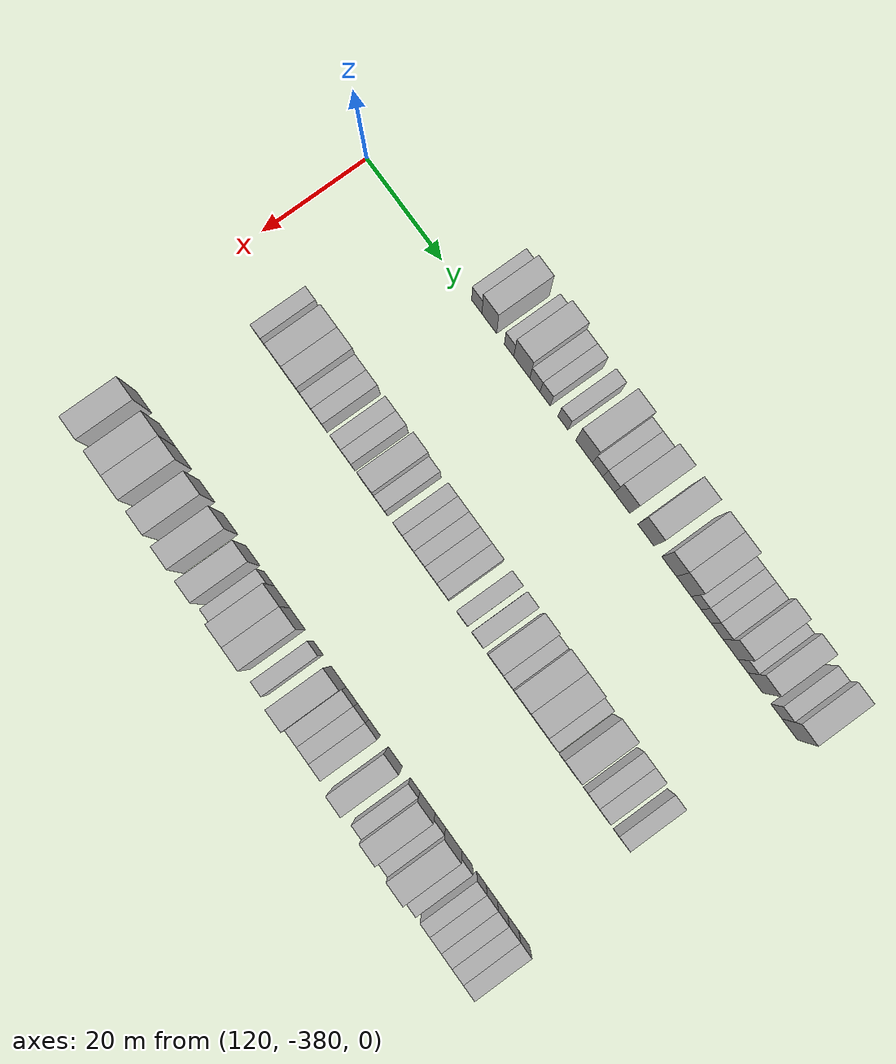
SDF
<sdf version="1.6">
 <world name="default">
  <model name="building_706">
   <static>1</static>
   <pose>115.0000 -350.8113 0 0.000000 0.000000 0.000000</pose>
   <link name="link">
    <pose>0 0 3.00 0 0 0</pose>
    <collision name="collision"><geometry><box><size>10.0000 2.6884 6.0000</size></box></geometry></collision>
    <visual name="visual">
     <cast_shadows>0</cast_shadows>
     <geometry><box><size>10.0000 2.6884 6.0000</size></box></geometry>
     <material>
      <script>
       <uri>model://HANNAS_wall/materials/scripts</uri>
       <uri>model://HANNAS_wall/materials/textures</uri>
       <name>vrc/HANNAS_wall</name>
      </script>
     </material>
    </visual>
   </link>
  </model>
  <model name="building_707">
   <static>1</static>
   <pose>115.0000 -347.5582 0 0.000000 0.000000 0.000000</pose>
   <link name="link">
    <pose>0 0 4.50 0 0 0</pose>
    <collision name="collision"><geometry><box><size>10.0000 3.8179 9.0000</size></box></geometry></collision>
    <visual name="visual">
     <cast_shadows>0</cast_shadows>
     <geometry><box><size>10.0000 3.8179 9.0000</size></box></geometry>
     <material>
      <script>
       <uri>model://HANNAS_wall/materials/scripts</uri>
       <uri>model://HANNAS_wall/materials/textures</uri>
       <name>vrc/HANNAS_wall</name>
      </script>
     </material>
    </visual>
   </link>
  </model>
  <model name="building_708">
   <static>1</static>
   <pose>115.0000 -342.4204 0 0.000000 0.000000 0.000000</pose>
   <link name="link">
    <pose>0 0 3.00 0 0 0</pose>
    <collision name="collision"><geometry><box><size>10.0000 2.4578 6.0000</size></box></geometry></collision>
    <visual name="visual">
     <cast_shadows>0</cast_shadows>
     <geometry><box><size>10.0000 2.4578 6.0000</size></box></geometry>
     <material>
      <script>
       <uri>model://HANNAS_wall/materials/scripts</uri>
       <uri>model://HANNAS_wall/materials/textures</uri>
       <name>vrc/HANNAS_wall</name>
      </script>
     </material>
    </visual>
   </link>
  </model>
  <model name="building_709">
   <static>1</static>
   <pose>115.0000 -339.1095 0 0.000000 0.000000 0.000000</pose>
   <link name="link">
    <pose>0 0 4.50 0 0 0</pose>
    <collision name="collision"><geometry><box><size>10.0000 4.1639 9.0000</size></box></geometry></collision>
    <visual name="visual">
     <cast_shadows>0</cast_shadows>
     <geometry><box><size>10.0000 4.1639 9.0000</size></box></geometry>
     <material>
      <script>
       <uri>model://HANNAS_wall/materials/scripts</uri>
       <uri>model://HANNAS_wall/materials/textures</uri>
       <name>vrc/HANNAS_wall</name>
      </script>
     </material>
    </visual>
   </link>
  </model>
  <model name="building_710">
   <static>1</static>
   <pose>115.0000 -335.6915 0 0.000000 0.000000 0.000000</pose>
   <link name="link">
    <pose>0 0 3.00 0 0 0</pose>
    <collision name="collision"><geometry><box><size>10.0000 2.6723 6.0000</size></box></geometry></collision>
    <visual name="visual">
     <cast_shadows>0</cast_shadows>
     <geometry><box><size>10.0000 2.6723 6.0000</size></box></geometry>
     <material>
      <script>
       <uri>model://HANNAS_wall/materials/scripts</uri>
       <uri>model://HANNAS_wall/materials/textures</uri>
       <name>vrc/HANNAS_wall</name>
      </script>
     </material>
    </visual>
   </link>
  </model>
  <model name="building_711">
   <static>1</static>
   <pose>115.0000 -333.0444 0 0.000000 0.000000 0.000000</pose>
   <link name="link">
    <pose>0 0 3.00 0 0 0</pose>
    <collision name="collision"><geometry><box><size>10.0000 2.6220 6.0000</size></box></geometry></collision>
    <visual name="visual">
     <cast_shadows>0</cast_shadows>
     <geometry><box><size>10.0000 2.6220 6.0000</size></box></geometry>
     <material>
      <script>
       <uri>model://HANNAS_wall/materials/scripts</uri>
       <uri>model://HANNAS_wall/materials/textures</uri>
       <name>vrc/HANNAS_wall</name>
      </script>
     </material>
    </visual>
   </link>
  </model>
  <model name="building_712">
   <static>1</static>
   <pose>115.0000 -328.4380 0 0.000000 0.000000 0.000000</pose>
   <link name="link">
    <pose>0 0 3.00 0 0 0</pose>
    <collision name="collision"><geometry><box><size>10.0000 2.5908 6.0000</size></box></geometry></collision>
    <visual name="visual">
     <cast_shadows>0</cast_shadows>
     <geometry><box><size>10.0000 2.5908 6.0000</size></box></geometry>
     <material>
      <script>
       <uri>model://HANNAS_wall/materials/scripts</uri>
       <uri>model://HANNAS_wall/materials/textures</uri>
       <name>vrc/HANNAS_wall</name>
      </script>
     </material>
    </visual>
   </link>
  </model>
  <model name="building_713">
   <static>1</static>
   <pose>115.0000 -322.9918 0 0.000000 0.000000 0.000000</pose>
   <link name="link">
    <pose>0 0 4.50 0 0 0</pose>
    <collision name="collision"><geometry><box><size>10.0000 4.3016 9.0000</size></box></geometry></collision>
    <visual name="visual">
     <cast_shadows>0</cast_shadows>
     <geometry><box><size>10.0000 4.3016 9.0000</size></box></geometry>
     <material>
      <script>
       <uri>model://HANNAS_wall/materials/scripts</uri>
       <uri>model://HANNAS_wall/materials/textures</uri>
       <name>vrc/HANNAS_wall</name>
      </script>
     </material>
    </visual>
   </link>
  </model>
  <model name="building_714">
   <static>1</static>
   <pose>115.0000 -319.5148 0 0.000000 0.000000 0.000000</pose>
   <link name="link">
    <pose>0 0 3.00 0 0 0</pose>
    <collision name="collision"><geometry><box><size>10.0000 2.6524 6.0000</size></box></geometry></collision>
    <visual name="visual">
     <cast_shadows>0</cast_shadows>
     <geometry><box><size>10.0000 2.6524 6.0000</size></box></geometry>
     <material>
      <script>
       <uri>model://HANNAS_wall/materials/scripts</uri>
       <uri>model://HANNAS_wall/materials/textures</uri>
       <name>vrc/HANNAS_wall</name>
      </script>
     </material>
    </visual>
   </link>
  </model>
  <model name="building_715">
   <static>1</static>
   <pose>115.0000 -316.7003 0 0.000000 0.000000 0.000000</pose>
   <link name="link">
    <pose>0 0 3.00 0 0 0</pose>
    <collision name="collision"><geometry><box><size>10.0000 2.9765 6.0000</size></box></geometry></collision>
    <visual name="visual">
     <cast_shadows>0</cast_shadows>
     <geometry><box><size>10.0000 2.9765 6.0000</size></box></geometry>
     <material>
      <script>
       <uri>model://HANNAS_wall/materials/scripts</uri>
       <uri>model://HANNAS_wall/materials/textures</uri>
       <name>vrc/HANNAS_wall</name>
      </script>
     </material>
    </visual>
   </link>
  </model>
  <model name="building_716">
   <static>1</static>
   <pose>115.0000 -313.2595 0 0.000000 0.000000 0.000000</pose>
   <link name="link">
    <pose>0 0 4.50 0 0 0</pose>
    <collision name="collision"><geometry><box><size>10.0000 3.9050 9.0000</size></box></geometry></collision>
    <visual name="visual">
     <cast_shadows>0</cast_shadows>
     <geometry><box><size>10.0000 3.9050 9.0000</size></box></geometry>
     <material>
      <script>
       <uri>model://HANNAS_wall/materials/scripts</uri>
       <uri>model://HANNAS_wall/materials/textures</uri>
       <name>vrc/HANNAS_wall</name>
      </script>
     </material>
    </visual>
   </link>
  </model>
  <model name="building_717">
   <static>1</static>
   <pose>115.0000 -307.2554 0 0.000000 0.000000 0.000000</pose>
   <link name="link">
    <pose>0 0 4.50 0 0 0</pose>
    <collision name="collision"><geometry><box><size>10.0000 4.1033 9.0000</size></box></geometry></collision>
    <visual name="visual">
     <cast_shadows>0</cast_shadows>
     <geometry><box><size>10.0000 4.1033 9.0000</size></box></geometry>
     <material>
      <script>
       <uri>model://HANNAS_wall/materials/scripts</uri>
       <uri>model://HANNAS_wall/materials/textures</uri>
       <name>vrc/HANNAS_wall</name>
      </script>
     </material>
    </visual>
   </link>
  </model>
  <model name="building_718">
   <static>1</static>
   <pose>115.0000 -301.3726 0 0.000000 0.000000 0.000000</pose>
   <link name="link">
    <pose>0 0 4.50 0 0 0</pose>
    <collision name="collision"><geometry><box><size>10.0000 3.6623 9.0000</size></box></geometry></collision>
    <visual name="visual">
     <cast_shadows>0</cast_shadows>
     <geometry><box><size>10.0000 3.6623 9.0000</size></box></geometry>
     <material>
      <script>
       <uri>model://HANNAS_wall/materials/scripts</uri>
       <uri>model://HANNAS_wall/materials/textures</uri>
       <name>vrc/HANNAS_wall</name>
      </script>
     </material>
    </visual>
   </link>
  </model>
  <model name="building_719">
   <static>1</static>
   <pose>115.0000 -297.6748 0 0.000000 0.000000 0.000000</pose>
   <link name="link">
    <pose>0 0 4.50 0 0 0</pose>
    <collision name="collision"><geometry><box><size>10.0000 3.7334 9.0000</size></box></geometry></collision>
    <visual name="visual">
     <cast_shadows>0</cast_shadows>
     <geometry><box><size>10.0000 3.7334 9.0000</size></box></geometry>
     <material>
      <script>
       <uri>model://HANNAS_wall/materials/scripts</uri>
       <uri>model://HANNAS_wall/materials/textures</uri>
       <name>vrc/HANNAS_wall</name>
      </script>
     </material>
    </visual>
   </link>
  </model>
  <model name="building_720">
   <static>1</static>
   <pose>115.0000 -294.5920 0 0.000000 0.000000 0.000000</pose>
   <link name="link">
    <pose>0 0 3.00 0 0 0</pose>
    <collision name="collision"><geometry><box><size>10.0000 2.4323 6.0000</size></box></geometry></collision>
    <visual name="visual">
     <cast_shadows>0</cast_shadows>
     <geometry><box><size>10.0000 2.4323 6.0000</size></box></geometry>
     <material>
      <script>
       <uri>model://HANNAS_wall/materials/scripts</uri>
       <uri>model://HANNAS_wall/materials/textures</uri>
       <name>vrc/HANNAS_wall</name>
      </script>
     </material>
    </visual>
   </link>
  </model>
  <model name="building_721">
   <static>1</static>
   <pose>115.0000 -292.0823 0 0.000000 0.000000 0.000000</pose>
   <link name="link">
    <pose>0 0 3.00 0 0 0</pose>
    <collision name="collision"><geometry><box><size>10.0000 2.5871 6.0000</size></box></geometry></collision>
    <visual name="visual">
     <cast_shadows>0</cast_shadows>
     <geometry><box><size>10.0000 2.5871 6.0000</size></box></geometry>
     <material>
      <script>
       <uri>model://HANNAS_wall/materials/scripts</uri>
       <uri>model://HANNAS_wall/materials/textures</uri>
       <name>vrc/HANNAS_wall</name>
      </script>
     </material>
    </visual>
   </link>
  </model>
  <model name="building_722">
   <static>1</static>
   <pose>115.0000 -289.2990 0 0.000000 0.000000 0.000000</pose>
   <link name="link">
    <pose>0 0 3.00 0 0 0</pose>
    <collision name="collision"><geometry><box><size>10.0000 2.9794 6.0000</size></box></geometry></collision>
    <visual name="visual">
     <cast_shadows>0</cast_shadows>
     <geometry><box><size>10.0000 2.9794 6.0000</size></box></geometry>
     <material>
      <script>
       <uri>model://HANNAS_wall/materials/scripts</uri>
       <uri>model://HANNAS_wall/materials/textures</uri>
       <name>vrc/HANNAS_wall</name>
      </script>
     </material>
    </visual>
   </link>
  </model>
  <model name="building_723">
   <static>1</static>
   <pose>115.0000 -285.9742 0 0.000000 0.000000 0.000000</pose>
   <link name="link">
    <pose>0 0 4.50 0 0 0</pose>
    <collision name="collision"><geometry><box><size>10.0000 3.6703 9.0000</size></box></geometry></collision>
    <visual name="visual">
     <cast_shadows>0</cast_shadows>
     <geometry><box><size>10.0000 3.6703 9.0000</size></box></geometry>
     <material>
      <script>
       <uri>model://HANNAS_wall/materials/scripts</uri>
       <uri>model://HANNAS_wall/materials/textures</uri>
       <name>vrc/HANNAS_wall</name>
      </script>
     </material>
    </visual>
   </link>
  </model>
  <model name="building_724">
   <static>1</static>
   <pose>115.0000 -282.9062 0 0.000000 0.000000 0.000000</pose>
   <link name="link">
    <pose>0 0 3.00 0 0 0</pose>
    <collision name="collision"><geometry><box><size>10.0000 2.4657 6.0000</size></box></geometry></collision>
    <visual name="visual">
     <cast_shadows>0</cast_shadows>
     <geometry><box><size>10.0000 2.4657 6.0000</size></box></geometry>
     <material>
      <script>
       <uri>model://HANNAS_wall/materials/scripts</uri>
       <uri>model://HANNAS_wall/materials/textures</uri>
       <name>vrc/HANNAS_wall</name>
      </script>
     </material>
    </visual>
   </link>
  </model>
  <model name="building_725">
   <static>1</static>
   <pose>115.0000 -279.8290 0 0.000000 0.000000 0.000000</pose>
   <link name="link">
    <pose>0 0 4.50 0 0 0</pose>
    <collision name="collision"><geometry><box><size>10.0000 3.6887 9.0000</size></box></geometry></collision>
    <visual name="visual">
     <cast_shadows>0</cast_shadows>
     <geometry><box><size>10.0000 3.6887 9.0000</size></box></geometry>
     <material>
      <script>
       <uri>model://HANNAS_wall/materials/scripts</uri>
       <uri>model://HANNAS_wall/materials/textures</uri>
       <name>vrc/HANNAS_wall</name>
      </script>
     </material>
    </visual>
   </link>
  </model>
  <model name="building_726">
   <static>1</static>
   <pose>115.0000 -274.6248 0 0.000000 0.000000 0.000000</pose>
   <link name="link">
    <pose>0 0 3.00 0 0 0</pose>
    <collision name="collision"><geometry><box><size>10.0000 2.7199 6.0000</size></box></geometry></collision>
    <visual name="visual">
     <cast_shadows>0</cast_shadows>
     <geometry><box><size>10.0000 2.7199 6.0000</size></box></geometry>
     <material>
      <script>
       <uri>model://HANNAS_wall/materials/scripts</uri>
       <uri>model://HANNAS_wall/materials/textures</uri>
       <name>vrc/HANNAS_wall</name>
      </script>
     </material>
    </visual>
   </link>
  </model>
  <model name="building_727">
   <static>1</static>
   <pose>115.0000 -271.3544 0 0.000000 0.000000 0.000000</pose>
   <link name="link">
    <pose>0 0 4.50 0 0 0</pose>
    <collision name="collision"><geometry><box><size>10.0000 3.8208 9.0000</size></box></geometry></collision>
    <visual name="visual">
     <cast_shadows>0</cast_shadows>
     <geometry><box><size>10.0000 3.8208 9.0000</size></box></geometry>
     <material>
      <script>
       <uri>model://HANNAS_wall/materials/scripts</uri>
       <uri>model://HANNAS_wall/materials/textures</uri>
       <name>vrc/HANNAS_wall</name>
      </script>
     </material>
    </visual>
   </link>
  </model>
  <model name="building_933">
   <static>1</static>
   <pose>145.0000 -365.4677 0 0.000000 0.000000 0.000000</pose>
   <link name="link">
    <pose>0 0 3.00 0 0 0</pose>
    <collision name="collision"><geometry><box><size>10.0000 2.6001 6.0000</size></box></geometry></collision>
    <visual name="visual">
     <cast_shadows>0</cast_shadows>
     <geometry><box><size>10.0000 2.6001 6.0000</size></box></geometry>
     <material>
      <script>
       <uri>model://HANNAS_wall/materials/scripts</uri>
       <uri>model://HANNAS_wall/materials/textures</uri>
       <name>vrc/HANNAS_wall</name>
      </script>
     </material>
    </visual>
   </link>
  </model>
  <model name="building_934">
   <static>1</static>
   <pose>145.0000 -360.0691 0 0.000000 0.000000 0.000000</pose>
   <link name="link">
    <pose>0 0 4.50 0 0 0</pose>
    <collision name="collision"><geometry><box><size>10.0000 4.1971 9.0000</size></box></geometry></collision>
    <visual name="visual">
     <cast_shadows>0</cast_shadows>
     <geometry><box><size>10.0000 4.1971 9.0000</size></box></geometry>
     <material>
      <script>
       <uri>model://HANNAS_wall/materials/scripts</uri>
       <uri>model://HANNAS_wall/materials/textures</uri>
       <name>vrc/HANNAS_wall</name>
      </script>
     </material>
    </visual>
   </link>
  </model>
  <model name="building_935">
   <static>1</static>
   <pose>145.0000 -356.0394 0 0.000000 0.000000 0.000000</pose>
   <link name="link">
    <pose>0 0 4.50 0 0 0</pose>
    <collision name="collision"><geometry><box><size>10.0000 3.8623 9.0000</size></box></geometry></collision>
    <visual name="visual">
     <cast_shadows>0</cast_shadows>
     <geometry><box><size>10.0000 3.8623 9.0000</size></box></geometry>
     <material>
      <script>
       <uri>model://HANNAS_wall/materials/scripts</uri>
       <uri>model://HANNAS_wall/materials/textures</uri>
       <name>vrc/HANNAS_wall</name>
      </script>
     </material>
    </visual>
   </link>
  </model>
  <model name="building_936">
   <static>1</static>
   <pose>145.0000 -352.6444 0 0.000000 0.000000 0.000000</pose>
   <link name="link">
    <pose>0 0 3.00 0 0 0</pose>
    <collision name="collision"><geometry><box><size>10.0000 2.9276 6.0000</size></box></geometry></collision>
    <visual name="visual">
     <cast_shadows>0</cast_shadows>
     <geometry><box><size>10.0000 2.9276 6.0000</size></box></geometry>
     <material>
      <script>
       <uri>model://HANNAS_wall/materials/scripts</uri>
       <uri>model://HANNAS_wall/materials/textures</uri>
       <name>vrc/HANNAS_wall</name>
      </script>
     </material>
    </visual>
   </link>
  </model>
  <model name="building_937">
   <static>1</static>
   <pose>145.0000 -349.7613 0 0.000000 0.000000 0.000000</pose>
   <link name="link">
    <pose>0 0 3.00 0 0 0</pose>
    <collision name="collision"><geometry><box><size>10.0000 2.8388 6.0000</size></box></geometry></collision>
    <visual name="visual">
     <cast_shadows>0</cast_shadows>
     <geometry><box><size>10.0000 2.8388 6.0000</size></box></geometry>
     <material>
      <script>
       <uri>model://HANNAS_wall/materials/scripts</uri>
       <uri>model://HANNAS_wall/materials/textures</uri>
       <name>vrc/HANNAS_wall</name>
      </script>
     </material>
    </visual>
   </link>
  </model>
  <model name="building_938">
   <static>1</static>
   <pose>145.0000 -344.9999 0 0.000000 0.000000 0.000000</pose>
   <link name="link">
    <pose>0 0 3.00 0 0 0</pose>
    <collision name="collision"><geometry><box><size>10.0000 2.6840 6.0000</size></box></geometry></collision>
    <visual name="visual">
     <cast_shadows>0</cast_shadows>
     <geometry><box><size>10.0000 2.6840 6.0000</size></box></geometry>
     <material>
      <script>
       <uri>model://HANNAS_wall/materials/scripts</uri>
       <uri>model://HANNAS_wall/materials/textures</uri>
       <name>vrc/HANNAS_wall</name>
      </script>
     </material>
    </visual>
   </link>
  </model>
  <model name="building_939">
   <static>1</static>
   <pose>145.0000 -342.3365 0 0.000000 0.000000 0.000000</pose>
   <link name="link">
    <pose>0 0 3.00 0 0 0</pose>
    <collision name="collision"><geometry><box><size>10.0000 2.6427 6.0000</size></box></geometry></collision>
    <visual name="visual">
     <cast_shadows>0</cast_shadows>
     <geometry><box><size>10.0000 2.6427 6.0000</size></box></geometry>
     <material>
      <script>
       <uri>model://HANNAS_wall/materials/scripts</uri>
       <uri>model://HANNAS_wall/materials/textures</uri>
       <name>vrc/HANNAS_wall</name>
      </script>
     </material>
    </visual>
   </link>
  </model>
  <model name="building_940">
   <static>1</static>
   <pose>145.0000 -337.1636 0 0.000000 0.000000 0.000000</pose>
   <link name="link">
    <pose>0 0 4.50 0 0 0</pose>
    <collision name="collision"><geometry><box><size>10.0000 3.7031 9.0000</size></box></geometry></collision>
    <visual name="visual">
     <cast_shadows>0</cast_shadows>
     <geometry><box><size>10.0000 3.7031 9.0000</size></box></geometry>
     <material>
      <script>
       <uri>model://HANNAS_wall/materials/scripts</uri>
       <uri>model://HANNAS_wall/materials/textures</uri>
       <name>vrc/HANNAS_wall</name>
      </script>
     </material>
    </visual>
   </link>
  </model>
  <model name="building_941">
   <static>1</static>
   <pose>145.0000 -333.9051 0 0.000000 0.000000 0.000000</pose>
   <link name="link">
    <pose>0 0 3.00 0 0 0</pose>
    <collision name="collision"><geometry><box><size>10.0000 2.8138 6.0000</size></box></geometry></collision>
    <visual name="visual">
     <cast_shadows>0</cast_shadows>
     <geometry><box><size>10.0000 2.8138 6.0000</size></box></geometry>
     <material>
      <script>
       <uri>model://HANNAS_wall/materials/scripts</uri>
       <uri>model://HANNAS_wall/materials/textures</uri>
       <name>vrc/HANNAS_wall</name>
      </script>
     </material>
    </visual>
   </link>
  </model>
  <model name="building_942">
   <static>1</static>
   <pose>145.0000 -329.2897 0 0.000000 0.000000 0.000000</pose>
   <link name="link">
    <pose>0 0 3.00 0 0 0</pose>
    <collision name="collision"><geometry><box><size>10.0000 2.4170 6.0000</size></box></geometry></collision>
    <visual name="visual">
     <cast_shadows>0</cast_shadows>
     <geometry><box><size>10.0000 2.4170 6.0000</size></box></geometry>
     <material>
      <script>
       <uri>model://HANNAS_wall/materials/scripts</uri>
       <uri>model://HANNAS_wall/materials/textures</uri>
       <name>vrc/HANNAS_wall</name>
      </script>
     </material>
    </visual>
   </link>
  </model>
  <model name="building_943">
   <static>1</static>
   <pose>145.0000 -326.6623 0 0.000000 0.000000 0.000000</pose>
   <link name="link">
    <pose>0 0 3.00 0 0 0</pose>
    <collision name="collision"><geometry><box><size>10.0000 2.8379 6.0000</size></box></geometry></collision>
    <visual name="visual">
     <cast_shadows>0</cast_shadows>
     <geometry><box><size>10.0000 2.8379 6.0000</size></box></geometry>
     <material>
      <script>
       <uri>model://HANNAS_wall/materials/scripts</uri>
       <uri>model://HANNAS_wall/materials/textures</uri>
       <name>vrc/HANNAS_wall</name>
      </script>
     </material>
    </visual>
   </link>
  </model>
  <model name="building_944">
   <static>1</static>
   <pose>145.0000 -323.8702 0 0.000000 0.000000 0.000000</pose>
   <link name="link">
    <pose>0 0 3.00 0 0 0</pose>
    <collision name="collision"><geometry><box><size>10.0000 2.7462 6.0000</size></box></geometry></collision>
    <visual name="visual">
     <cast_shadows>0</cast_shadows>
     <geometry><box><size>10.0000 2.7462 6.0000</size></box></geometry>
     <material>
      <script>
       <uri>model://HANNAS_wall/materials/scripts</uri>
       <uri>model://HANNAS_wall/materials/textures</uri>
       <name>vrc/HANNAS_wall</name>
      </script>
     </material>
    </visual>
   </link>
  </model>
  <model name="building_945">
   <static>1</static>
   <pose>145.0000 -321.0031 0 0.000000 0.000000 0.000000</pose>
   <link name="link">
    <pose>0 0 3.00 0 0 0</pose>
    <collision name="collision"><geometry><box><size>10.0000 2.9878 6.0000</size></box></geometry></collision>
    <visual name="visual">
     <cast_shadows>0</cast_shadows>
     <geometry><box><size>10.0000 2.9878 6.0000</size></box></geometry>
     <material>
      <script>
       <uri>model://HANNAS_wall/materials/scripts</uri>
       <uri>model://HANNAS_wall/materials/textures</uri>
       <name>vrc/HANNAS_wall</name>
      </script>
     </material>
    </visual>
   </link>
  </model>
  <model name="building_946">
   <static>1</static>
   <pose>145.0000 -318.0660 0 0.000000 0.000000 0.000000</pose>
   <link name="link">
    <pose>0 0 3.00 0 0 0</pose>
    <collision name="collision"><geometry><box><size>10.0000 2.8864 6.0000</size></box></geometry></collision>
    <visual name="visual">
     <cast_shadows>0</cast_shadows>
     <geometry><box><size>10.0000 2.8864 6.0000</size></box></geometry>
     <material>
      <script>
       <uri>model://HANNAS_wall/materials/scripts</uri>
       <uri>model://HANNAS_wall/materials/textures</uri>
       <name>vrc/HANNAS_wall</name>
      </script>
     </material>
    </visual>
   </link>
  </model>
  <model name="building_947">
   <static>1</static>
   <pose>145.0000 -313.2412 0 0.000000 0.000000 0.000000</pose>
   <link name="link">
    <pose>0 0 3.00 0 0 0</pose>
    <collision name="collision"><geometry><box><size>10.0000 2.7632 6.0000</size></box></geometry></collision>
    <visual name="visual">
     <cast_shadows>0</cast_shadows>
     <geometry><box><size>10.0000 2.7632 6.0000</size></box></geometry>
     <material>
      <script>
       <uri>model://HANNAS_wall/materials/scripts</uri>
       <uri>model://HANNAS_wall/materials/textures</uri>
       <name>vrc/HANNAS_wall</name>
      </script>
     </material>
    </visual>
   </link>
  </model>
  <model name="building_948">
   <static>1</static>
   <pose>145.0000 -309.4080 0 0.000000 0.000000 0.000000</pose>
   <link name="link">
    <pose>0 0 3.00 0 0 0</pose>
    <collision name="collision"><geometry><box><size>10.0000 2.9034 6.0000</size></box></geometry></collision>
    <visual name="visual">
     <cast_shadows>0</cast_shadows>
     <geometry><box><size>10.0000 2.9034 6.0000</size></box></geometry>
     <material>
      <script>
       <uri>model://HANNAS_wall/materials/scripts</uri>
       <uri>model://HANNAS_wall/materials/textures</uri>
       <name>vrc/HANNAS_wall</name>
      </script>
     </material>
    </visual>
   </link>
  </model>
  <model name="building_949">
   <static>1</static>
   <pose>145.0000 -305.1080 0 0.000000 0.000000 0.000000</pose>
   <link name="link">
    <pose>0 0 4.50 0 0 0</pose>
    <collision name="collision"><geometry><box><size>10.0000 3.6966 9.0000</size></box></geometry></collision>
    <visual name="visual">
     <cast_shadows>0</cast_shadows>
     <geometry><box><size>10.0000 3.6966 9.0000</size></box></geometry>
     <material>
      <script>
       <uri>model://HANNAS_wall/materials/scripts</uri>
       <uri>model://HANNAS_wall/materials/textures</uri>
       <name>vrc/HANNAS_wall</name>
      </script>
     </material>
    </visual>
   </link>
  </model>
  <model name="building_950">
   <static>1</static>
   <pose>145.0000 -301.9781 0 0.000000 0.000000 0.000000</pose>
   <link name="link">
    <pose>0 0 3.00 0 0 0</pose>
    <collision name="collision"><geometry><box><size>10.0000 2.5632 6.0000</size></box></geometry></collision>
    <visual name="visual">
     <cast_shadows>0</cast_shadows>
     <geometry><box><size>10.0000 2.5632 6.0000</size></box></geometry>
     <material>
      <script>
       <uri>model://HANNAS_wall/materials/scripts</uri>
       <uri>model://HANNAS_wall/materials/textures</uri>
       <name>vrc/HANNAS_wall</name>
      </script>
     </material>
    </visual>
   </link>
  </model>
  <model name="building_951">
   <static>1</static>
   <pose>145.0000 -298.6809 0 0.000000 0.000000 0.000000</pose>
   <link name="link">
    <pose>0 0 4.50 0 0 0</pose>
    <collision name="collision"><geometry><box><size>10.0000 4.0311 9.0000</size></box></geometry></collision>
    <visual name="visual">
     <cast_shadows>0</cast_shadows>
     <geometry><box><size>10.0000 4.0311 9.0000</size></box></geometry>
     <material>
      <script>
       <uri>model://HANNAS_wall/materials/scripts</uri>
       <uri>model://HANNAS_wall/materials/textures</uri>
       <name>vrc/HANNAS_wall</name>
      </script>
     </material>
    </visual>
   </link>
  </model>
  <model name="building_952">
   <static>1</static>
   <pose>145.0000 -294.5324 0 0.000000 0.000000 0.000000</pose>
   <link name="link">
    <pose>0 0 4.50 0 0 0</pose>
    <collision name="collision"><geometry><box><size>10.0000 4.2659 9.0000</size></box></geometry></collision>
    <visual name="visual">
     <cast_shadows>0</cast_shadows>
     <geometry><box><size>10.0000 4.2659 9.0000</size></box></geometry>
     <material>
      <script>
       <uri>model://HANNAS_wall/materials/scripts</uri>
       <uri>model://HANNAS_wall/materials/textures</uri>
       <name>vrc/HANNAS_wall</name>
      </script>
     </material>
    </visual>
   </link>
  </model>
  <model name="building_953">
   <static>1</static>
   <pose>145.0000 -291.0200 0 0.000000 0.000000 0.000000</pose>
   <link name="link">
    <pose>0 0 3.00 0 0 0</pose>
    <collision name="collision"><geometry><box><size>10.0000 2.7590 6.0000</size></box></geometry></collision>
    <visual name="visual">
     <cast_shadows>0</cast_shadows>
     <geometry><box><size>10.0000 2.7590 6.0000</size></box></geometry>
     <material>
      <script>
       <uri>model://HANNAS_wall/materials/scripts</uri>
       <uri>model://HANNAS_wall/materials/textures</uri>
       <name>vrc/HANNAS_wall</name>
      </script>
     </material>
    </visual>
   </link>
  </model>
  <model name="building_954">
   <static>1</static>
   <pose>145.0000 -286.5961 0 0.000000 0.000000 0.000000</pose>
   <link name="link">
    <pose>0 0 4.50 0 0 0</pose>
    <collision name="collision"><geometry><box><size>10.0000 4.0887 9.0000</size></box></geometry></collision>
    <visual name="visual">
     <cast_shadows>0</cast_shadows>
     <geometry><box><size>10.0000 4.0887 9.0000</size></box></geometry>
     <material>
      <script>
       <uri>model://HANNAS_wall/materials/scripts</uri>
       <uri>model://HANNAS_wall/materials/textures</uri>
       <name>vrc/HANNAS_wall</name>
      </script>
     </material>
    </visual>
   </link>
  </model>
  <model name="building_955">
   <static>1</static>
   <pose>145.0000 -281.1611 0 0.000000 0.000000 0.000000</pose>
   <link name="link">
    <pose>0 0 3.00 0 0 0</pose>
    <collision name="collision"><geometry><box><size>10.0000 2.7812 6.0000</size></box></geometry></collision>
    <visual name="visual">
     <cast_shadows>0</cast_shadows>
     <geometry><box><size>10.0000 2.7812 6.0000</size></box></geometry>
     <material>
      <script>
       <uri>model://HANNAS_wall/materials/scripts</uri>
       <uri>model://HANNAS_wall/materials/textures</uri>
       <name>vrc/HANNAS_wall</name>
      </script>
     </material>
    </visual>
   </link>
  </model>
  <model name="building_956">
   <static>1</static>
   <pose>145.0000 -278.4178 0 0.000000 0.000000 0.000000</pose>
   <link name="link">
    <pose>0 0 3.00 0 0 0</pose>
    <collision name="collision"><geometry><box><size>10.0000 2.7054 6.0000</size></box></geometry></collision>
    <visual name="visual">
     <cast_shadows>0</cast_shadows>
     <geometry><box><size>10.0000 2.7054 6.0000</size></box></geometry>
     <material>
      <script>
       <uri>model://HANNAS_wall/materials/scripts</uri>
       <uri>model://HANNAS_wall/materials/textures</uri>
       <name>vrc/HANNAS_wall</name>
      </script>
     </material>
    </visual>
   </link>
  </model>
  <model name="building_957">
   <static>1</static>
   <pose>145.0000 -273.7515 0 0.000000 0.000000 0.000000</pose>
   <link name="link">
    <pose>0 0 3.00 0 0 0</pose>
    <collision name="collision"><geometry><box><size>10.0000 2.6271 6.0000</size></box></geometry></collision>
    <visual name="visual">
     <cast_shadows>0</cast_shadows>
     <geometry><box><size>10.0000 2.6271 6.0000</size></box></geometry>
     <material>
      <script>
       <uri>model://HANNAS_wall/materials/scripts</uri>
       <uri>model://HANNAS_wall/materials/textures</uri>
       <name>vrc/HANNAS_wall</name>
      </script>
     </material>
    </visual>
   </link>
  </model>
  <model name="building_1158">
   <static>1</static>
   <pose>175.0000 -368.6374 0 0.000000 0.000000 0.000000</pose>
   <link name="link">
    <pose>0 0 4.50 0 0 0</pose>
    <collision name="collision"><geometry><box><size>10.0000 4.2030 9.0000</size></box></geometry></collision>
    <visual name="visual">
     <cast_shadows>0</cast_shadows>
     <geometry><box><size>10.0000 4.2030 9.0000</size></box></geometry>
     <material>
      <script>
       <uri>model://HANNAS_wall/materials/scripts</uri>
       <uri>model://HANNAS_wall/materials/textures</uri>
       <name>vrc/HANNAS_wall</name>
      </script>
     </material>
    </visual>
   </link>
  </model>
  <model name="building_1159">
   <static>1</static>
   <pose>175.0000 -362.3185 0 0.000000 0.000000 0.000000</pose>
   <link name="link">
    <pose>0 0 4.50 0 0 0</pose>
    <collision name="collision"><geometry><box><size>10.0000 4.4348 9.0000</size></box></geometry></collision>
    <visual name="visual">
     <cast_shadows>0</cast_shadows>
     <geometry><box><size>10.0000 4.4348 9.0000</size></box></geometry>
     <material>
      <script>
       <uri>model://HANNAS_wall/materials/scripts</uri>
       <uri>model://HANNAS_wall/materials/textures</uri>
       <name>vrc/HANNAS_wall</name>
      </script>
     </material>
    </visual>
   </link>
  </model>
  <model name="building_1160">
   <static>1</static>
   <pose>175.0000 -357.9323 0 0.000000 0.000000 0.000000</pose>
   <link name="link">
    <pose>0 0 4.50 0 0 0</pose>
    <collision name="collision"><geometry><box><size>10.0000 4.3376 9.0000</size></box></geometry></collision>
    <visual name="visual">
     <cast_shadows>0</cast_shadows>
     <geometry><box><size>10.0000 4.3376 9.0000</size></box></geometry>
     <material>
      <script>
       <uri>model://HANNAS_wall/materials/scripts</uri>
       <uri>model://HANNAS_wall/materials/textures</uri>
       <name>vrc/HANNAS_wall</name>
      </script>
     </material>
    </visual>
   </link>
  </model>
  <model name="building_1161">
   <static>1</static>
   <pose>175.0000 -351.6582 0 0.000000 0.000000 0.000000</pose>
   <link name="link">
    <pose>0 0 4.50 0 0 0</pose>
    <collision name="collision"><geometry><box><size>10.0000 4.2106 9.0000</size></box></geometry></collision>
    <visual name="visual">
     <cast_shadows>0</cast_shadows>
     <geometry><box><size>10.0000 4.2106 9.0000</size></box></geometry>
     <material>
      <script>
       <uri>model://HANNAS_wall/materials/scripts</uri>
       <uri>model://HANNAS_wall/materials/textures</uri>
       <name>vrc/HANNAS_wall</name>
      </script>
     </material>
    </visual>
   </link>
  </model>
  <model name="building_1162">
   <static>1</static>
   <pose>175.0000 -345.5135 0 0.000000 0.000000 0.000000</pose>
   <link name="link">
    <pose>0 0 4.50 0 0 0</pose>
    <collision name="collision"><geometry><box><size>10.0000 4.0790 9.0000</size></box></geometry></collision>
    <visual name="visual">
     <cast_shadows>0</cast_shadows>
     <geometry><box><size>10.0000 4.0790 9.0000</size></box></geometry>
     <material>
      <script>
       <uri>model://HANNAS_wall/materials/scripts</uri>
       <uri>model://HANNAS_wall/materials/textures</uri>
       <name>vrc/HANNAS_wall</name>
      </script>
     </material>
    </visual>
   </link>
  </model>
  <model name="building_1163">
   <static>1</static>
   <pose>175.0000 -339.5574 0 0.000000 0.000000 0.000000</pose>
   <link name="link">
    <pose>0 0 4.50 0 0 0</pose>
    <collision name="collision"><geometry><box><size>10.0000 3.8332 9.0000</size></box></geometry></collision>
    <visual name="visual">
     <cast_shadows>0</cast_shadows>
     <geometry><box><size>10.0000 3.8332 9.0000</size></box></geometry>
     <material>
      <script>
       <uri>model://HANNAS_wall/materials/scripts</uri>
       <uri>model://HANNAS_wall/materials/textures</uri>
       <name>vrc/HANNAS_wall</name>
      </script>
     </material>
    </visual>
   </link>
  </model>
  <model name="building_1164">
   <static>1</static>
   <pose>175.0000 -335.2758 0 0.000000 0.000000 0.000000</pose>
   <link name="link">
    <pose>0 0 3.00 0 0 0</pose>
    <collision name="collision"><geometry><box><size>10.0000 2.7300 6.0000</size></box></geometry></collision>
    <visual name="visual">
     <cast_shadows>0</cast_shadows>
     <geometry><box><size>10.0000 2.7300 6.0000</size></box></geometry>
     <material>
      <script>
       <uri>model://HANNAS_wall/materials/scripts</uri>
       <uri>model://HANNAS_wall/materials/textures</uri>
       <name>vrc/HANNAS_wall</name>
      </script>
     </material>
    </visual>
   </link>
  </model>
  <model name="building_1165">
   <static>1</static>
   <pose>175.0000 -331.8632 0 0.000000 0.000000 0.000000</pose>
   <link name="link">
    <pose>0 0 4.50 0 0 0</pose>
    <collision name="collision"><geometry><box><size>10.0000 4.0951 9.0000</size></box></geometry></collision>
    <visual name="visual">
     <cast_shadows>0</cast_shadows>
     <geometry><box><size>10.0000 4.0951 9.0000</size></box></geometry>
     <material>
      <script>
       <uri>model://HANNAS_wall/materials/scripts</uri>
       <uri>model://HANNAS_wall/materials/textures</uri>
       <name>vrc/HANNAS_wall</name>
      </script>
     </material>
    </visual>
   </link>
  </model>
  <model name="building_1166">
   <static>1</static>
   <pose>175.0000 -327.7874 0 0.000000 0.000000 0.000000</pose>
   <link name="link">
    <pose>0 0 4.50 0 0 0</pose>
    <collision name="collision"><geometry><box><size>10.0000 4.0565 9.0000</size></box></geometry></collision>
    <visual name="visual">
     <cast_shadows>0</cast_shadows>
     <geometry><box><size>10.0000 4.0565 9.0000</size></box></geometry>
     <material>
      <script>
       <uri>model://HANNAS_wall/materials/scripts</uri>
       <uri>model://HANNAS_wall/materials/textures</uri>
       <name>vrc/HANNAS_wall</name>
      </script>
     </material>
    </visual>
   </link>
  </model>
  <model name="building_1167">
   <static>1</static>
   <pose>175.0000 -322.4292 0 0.000000 0.000000 0.000000</pose>
   <link name="link">
    <pose>0 0 3.00 0 0 0</pose>
    <collision name="collision"><geometry><box><size>10.0000 2.6600 6.0000</size></box></geometry></collision>
    <visual name="visual">
     <cast_shadows>0</cast_shadows>
     <geometry><box><size>10.0000 2.6600 6.0000</size></box></geometry>
     <material>
      <script>
       <uri>model://HANNAS_wall/materials/scripts</uri>
       <uri>model://HANNAS_wall/materials/textures</uri>
       <name>vrc/HANNAS_wall</name>
      </script>
     </material>
    </visual>
   </link>
  </model>
  <model name="building_1168">
   <static>1</static>
   <pose>175.0000 -317.1443 0 0.000000 0.000000 0.000000</pose>
   <link name="link">
    <pose>0 0 4.50 0 0 0</pose>
    <collision name="collision"><geometry><box><size>10.0000 3.9099 9.0000</size></box></geometry></collision>
    <visual name="visual">
     <cast_shadows>0</cast_shadows>
     <geometry><box><size>10.0000 3.9099 9.0000</size></box></geometry>
     <material>
      <script>
       <uri>model://HANNAS_wall/materials/scripts</uri>
       <uri>model://HANNAS_wall/materials/textures</uri>
       <name>vrc/HANNAS_wall</name>
      </script>
     </material>
    </visual>
   </link>
  </model>
  <model name="building_1169">
   <static>1</static>
   <pose>175.0000 -313.7088 0 0.000000 0.000000 0.000000</pose>
   <link name="link">
    <pose>0 0 3.00 0 0 0</pose>
    <collision name="collision"><geometry><box><size>10.0000 2.9610 6.0000</size></box></geometry></collision>
    <visual name="visual">
     <cast_shadows>0</cast_shadows>
     <geometry><box><size>10.0000 2.9610 6.0000</size></box></geometry>
     <material>
      <script>
       <uri>model://HANNAS_wall/materials/scripts</uri>
       <uri>model://HANNAS_wall/materials/textures</uri>
       <name>vrc/HANNAS_wall</name>
      </script>
     </material>
    </visual>
   </link>
  </model>
  <model name="building_1170">
   <static>1</static>
   <pose>175.0000 -310.7548 0 0.000000 0.000000 0.000000</pose>
   <link name="link">
    <pose>0 0 3.00 0 0 0</pose>
    <collision name="collision"><geometry><box><size>10.0000 2.9471 6.0000</size></box></geometry></collision>
    <visual name="visual">
     <cast_shadows>0</cast_shadows>
     <geometry><box><size>10.0000 2.9471 6.0000</size></box></geometry>
     <material>
      <script>
       <uri>model://HANNAS_wall/materials/scripts</uri>
       <uri>model://HANNAS_wall/materials/textures</uri>
       <name>vrc/HANNAS_wall</name>
      </script>
     </material>
    </visual>
   </link>
  </model>
  <model name="building_1171">
   <static>1</static>
   <pose>175.0000 -307.8132 0 0.000000 0.000000 0.000000</pose>
   <link name="link">
    <pose>0 0 3.00 0 0 0</pose>
    <collision name="collision"><geometry><box><size>10.0000 2.9361 6.0000</size></box></geometry></collision>
    <visual name="visual">
     <cast_shadows>0</cast_shadows>
     <geometry><box><size>10.0000 2.9361 6.0000</size></box></geometry>
     <material>
      <script>
       <uri>model://HANNAS_wall/materials/scripts</uri>
       <uri>model://HANNAS_wall/materials/textures</uri>
       <name>vrc/HANNAS_wall</name>
      </script>
     </material>
    </visual>
   </link>
  </model>
  <model name="building_1172">
   <static>1</static>
   <pose>175.0000 -302.5279 0 0.000000 0.000000 0.000000</pose>
   <link name="link">
    <pose>0 0 4.50 0 0 0</pose>
    <collision name="collision"><geometry><box><size>10.0000 3.6346 9.0000</size></box></geometry></collision>
    <visual name="visual">
     <cast_shadows>0</cast_shadows>
     <geometry><box><size>10.0000 3.6346 9.0000</size></box></geometry>
     <material>
      <script>
       <uri>model://HANNAS_wall/materials/scripts</uri>
       <uri>model://HANNAS_wall/materials/textures</uri>
       <name>vrc/HANNAS_wall</name>
      </script>
     </material>
    </visual>
   </link>
  </model>
  <model name="building_1173">
   <static>1</static>
   <pose>175.0000 -297.4732 0 0.000000 0.000000 0.000000</pose>
   <link name="link">
    <pose>0 0 3.00 0 0 0</pose>
    <collision name="collision"><geometry><box><size>10.0000 2.4748 6.0000</size></box></geometry></collision>
    <visual name="visual">
     <cast_shadows>0</cast_shadows>
     <geometry><box><size>10.0000 2.4748 6.0000</size></box></geometry>
     <material>
      <script>
       <uri>model://HANNAS_wall/materials/scripts</uri>
       <uri>model://HANNAS_wall/materials/textures</uri>
       <name>vrc/HANNAS_wall</name>
      </script>
     </material>
    </visual>
   </link>
  </model>
  <model name="building_1174">
   <static>1</static>
   <pose>175.0000 -294.3233 0 0.000000 0.000000 0.000000</pose>
   <link name="link">
    <pose>0 0 4.50 0 0 0</pose>
    <collision name="collision"><geometry><box><size>10.0000 3.8250 9.0000</size></box></geometry></collision>
    <visual name="visual">
     <cast_shadows>0</cast_shadows>
     <geometry><box><size>10.0000 3.8250 9.0000</size></box></geometry>
     <material>
      <script>
       <uri>model://HANNAS_wall/materials/scripts</uri>
       <uri>model://HANNAS_wall/materials/textures</uri>
       <name>vrc/HANNAS_wall</name>
      </script>
     </material>
    </visual>
   </link>
  </model>
  <model name="building_1175">
   <static>1</static>
   <pose>175.0000 -291.1064 0 0.000000 0.000000 0.000000</pose>
   <link name="link">
    <pose>0 0 3.00 0 0 0</pose>
    <collision name="collision"><geometry><box><size>10.0000 2.6089 6.0000</size></box></geometry></collision>
    <visual name="visual">
     <cast_shadows>0</cast_shadows>
     <geometry><box><size>10.0000 2.6089 6.0000</size></box></geometry>
     <material>
      <script>
       <uri>model://HANNAS_wall/materials/scripts</uri>
       <uri>model://HANNAS_wall/materials/textures</uri>
       <name>vrc/HANNAS_wall</name>
      </script>
     </material>
    </visual>
   </link>
  </model>
  <model name="building_1176">
   <static>1</static>
   <pose>175.0000 -287.7656 0 0.000000 0.000000 0.000000</pose>
   <link name="link">
    <pose>0 0 4.50 0 0 0</pose>
    <collision name="collision"><geometry><box><size>10.0000 4.0728 9.0000</size></box></geometry></collision>
    <visual name="visual">
     <cast_shadows>0</cast_shadows>
     <geometry><box><size>10.0000 4.0728 9.0000</size></box></geometry>
     <material>
      <script>
       <uri>model://HANNAS_wall/materials/scripts</uri>
       <uri>model://HANNAS_wall/materials/textures</uri>
       <name>vrc/HANNAS_wall</name>
      </script>
     </material>
    </visual>
   </link>
  </model>
  <model name="building_1177">
   <static>1</static>
   <pose>175.0000 -284.3340 0 0.000000 0.000000 0.000000</pose>
   <link name="link">
    <pose>0 0 3.00 0 0 0</pose>
    <collision name="collision"><geometry><box><size>10.0000 2.7905 6.0000</size></box></geometry></collision>
    <visual name="visual">
     <cast_shadows>0</cast_shadows>
     <geometry><box><size>10.0000 2.7905 6.0000</size></box></geometry>
     <material>
      <script>
       <uri>model://HANNAS_wall/materials/scripts</uri>
       <uri>model://HANNAS_wall/materials/textures</uri>
       <name>vrc/HANNAS_wall</name>
      </script>
     </material>
    </visual>
   </link>
  </model>
  <model name="building_1178">
   <static>1</static>
   <pose>175.0000 -280.7353 0 0.000000 0.000000 0.000000</pose>
   <link name="link">
    <pose>0 0 3.00 0 0 0</pose>
    <collision name="collision"><geometry><box><size>10.0000 2.4069 6.0000</size></box></geometry></collision>
    <visual name="visual">
     <cast_shadows>0</cast_shadows>
     <geometry><box><size>10.0000 2.4069 6.0000</size></box></geometry>
     <material>
      <script>
       <uri>model://HANNAS_wall/materials/scripts</uri>
       <uri>model://HANNAS_wall/materials/textures</uri>
       <name>vrc/HANNAS_wall</name>
      </script>
     </material>
    </visual>
   </link>
  </model>
  <model name="building_1179">
   <static>1</static>
   <pose>175.0000 -278.1532 0 0.000000 0.000000 0.000000</pose>
   <link name="link">
    <pose>0 0 3.00 0 0 0</pose>
    <collision name="collision"><geometry><box><size>10.0000 2.7572 6.0000</size></box></geometry></collision>
    <visual name="visual">
     <cast_shadows>0</cast_shadows>
     <geometry><box><size>10.0000 2.7572 6.0000</size></box></geometry>
     <material>
      <script>
       <uri>model://HANNAS_wall/materials/scripts</uri>
       <uri>model://HANNAS_wall/materials/textures</uri>
       <name>vrc/HANNAS_wall</name>
      </script>
     </material>
    </visual>
   </link>
  </model>
  <model name="building_1180">
   <static>1</static>
   <pose>175.0000 -275.4732 0 0.000000 0.000000 0.000000</pose>
   <link name="link">
    <pose>0 0 3.00 0 0 0</pose>
    <collision name="collision"><geometry><box><size>10.0000 2.6029 6.0000</size></box></geometry></collision>
    <visual name="visual">
     <cast_shadows>0</cast_shadows>
     <geometry><box><size>10.0000 2.6029 6.0000</size></box></geometry>
     <material>
      <script>
       <uri>model://HANNAS_wall/materials/scripts</uri>
       <uri>model://HANNAS_wall/materials/textures</uri>
       <name>vrc/HANNAS_wall</name>
      </script>
     </material>
    </visual>
   </link>
  </model>
  <model name="building_1181">
   <static>1</static>
   <pose>175.0000 -272.8003 0 0.000000 0.000000 0.000000</pose>
   <link name="link">
    <pose>0 0 3.00 0 0 0</pose>
    <collision name="collision"><geometry><box><size>10.0000 2.7429 6.0000</size></box></geometry></collision>
    <visual name="visual">
     <cast_shadows>0</cast_shadows>
     <geometry><box><size>10.0000 2.7429 6.0000</size></box></geometry>
     <material>
      <script>
       <uri>model://HANNAS_wall/materials/scripts</uri>
       <uri>model://HANNAS_wall/materials/textures</uri>
       <name>vrc/HANNAS_wall</name>
      </script>
     </material>
    </visual>
   </link>
  </model>
  <model name="building_1182">
   <static>1</static>
   <pose>175.0000 -270.0786 0 0.000000 0.000000 0.000000</pose>
   <link name="link">
    <pose>0 0 3.00 0 0 0</pose>
    <collision name="collision"><geometry><box><size>10.0000 2.7006 6.0000</size></box></geometry></collision>
    <visual name="visual">
     <cast_shadows>0</cast_shadows>
     <geometry><box><size>10.0000 2.7006 6.0000</size></box></geometry>
     <material>
      <script>
       <uri>model://HANNAS_wall/materials/scripts</uri>
       <uri>model://HANNAS_wall/materials/textures</uri>
       <name>vrc/HANNAS_wall</name>
      </script>
     </material>
    </visual>
   </link>
  </model>
 </world>
</sdf>
